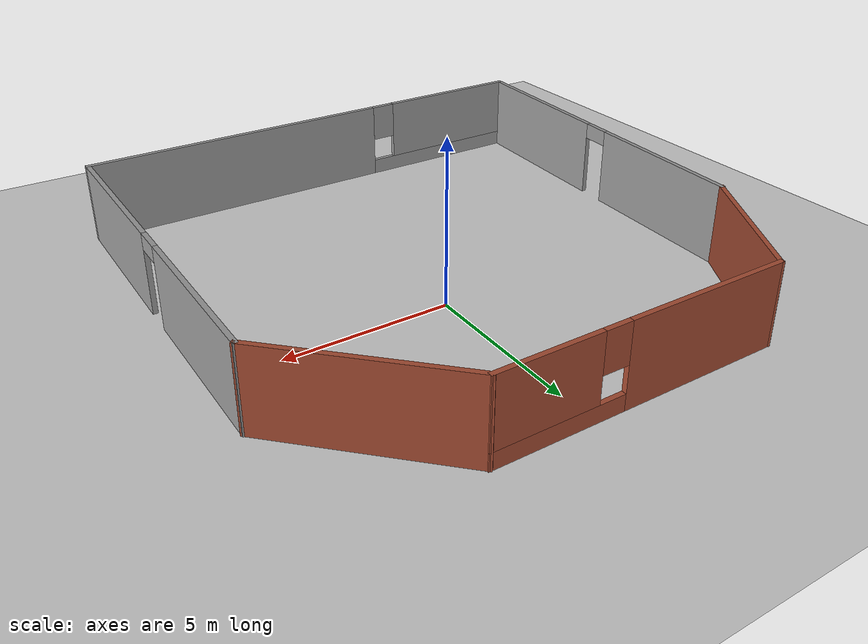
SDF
<sdf version="1.7">
 <world name="default">
  <light name="sun" type="directional">
   <pose>0 0 10 0 -0 0</pose>
   <diffuse>0.8 0.8 0.8 1</diffuse>
   <specular>0.2 0.2 0.2 1</specular>
   <attenuation>
    <range>1000</range>
    <constant>0.9</constant>
    <linear>0.01</linear>
    <quadratic>0.001</quadratic>
   </attenuation>
   <direction>-0.5 0.1 -0.9</direction>
   <spot><inner_angle>0</inner_angle><outer_angle>0</outer_angle><falloff>0</falloff></spot>
  </light>
  <model name="ground_plane">
   <static>1</static>
   <link name="link">
    <collision name="collision">
     <geometry><plane><normal>0 0 1</normal><size>100 100</size></plane></geometry>
     <surface><friction><ode><mu>100</mu><mu2>50</mu2></ode></friction></surface>
    </collision>
    <visual name="visual">
     <cast_shadows>0</cast_shadows>
     <geometry><plane><normal>0 0 1</normal><size>100 100</size></plane></geometry>
     <material>
      <script><uri>file://media/materials/scripts/gazebo.material</uri><name>Gazebo/Grey</name></script>
     </material>
    </visual>
   </link>
  </model>
  <gravity>0 0 -9.8</gravity>
  <magnetic_field>6e-06 2.3e-05 -4.2e-05</magnetic_field>
  <atmosphere type="adiabatic"/>
  <physics type="ode">
   <max_step_size>0.001</max_step_size>
   <real_time_factor>1</real_time_factor>
   <real_time_update_rate>1000</real_time_update_rate>
  </physics>
  <scene><ambient>0.4 0.4 0.4 1</ambient><background>0.7 0.7 0.7 1</background><shadows>1</shadows></scene>
  <audio><device>default</device></audio>
  <spherical_coordinates>
   <surface_model>EARTH_WGS84</surface_model>
   <latitude_deg>0</latitude_deg>
   <longitude_deg>0</longitude_deg>
   <elevation>0</elevation>
   <heading_deg>0</heading_deg>
  </spherical_coordinates>
  <model name="casa">
   <pose>-0.843949 -1.57678 0 0 -0 0</pose>
   <link name="Wall_1">
    <collision name="Wall_1_Collision">
     <geometry><box><size>4.75 0.15 2.5</size></box></geometry>
     <pose>0 0 1.25 0 -0 0</pose>
    </collision>
    <visual name="Wall_1_Visual">
     <pose>0 0 1.25 0 -0 0</pose>
     <geometry><box><size>4.75 0.15 2.5</size></box></geometry>
     <material>
      <script><uri>file://media/materials/scripts/gazebo.material</uri><name>Gazebo/Bricks</name></script>
      <ambient>1 1 1 1</ambient>
     </material>
     <meta><layer>0</layer></meta>
    </visual>
    <pose>-6.17378 5.77406 0 0 -0 1.0472</pose>
   </link>
   <link name="Wall_2">
    <pose>-0.598778 7.76592 0 0 -0 0</pose>
    <visual name="Wall_2_Visual_0">
     <pose>-1.95446 0 1.25 0 -0 0</pose>
     <geometry><box><size>5.09108 0.15 2.5</size></box></geometry>
     <material>
      <script><uri>file://media/materials/scripts/gazebo.material</uri><name>Gazebo/Bricks</name></script>
      <ambient>1 1 1 1</ambient>
     </material>
     <meta><layer>0</layer></meta>
    </visual>
    <collision name="Wall_2_Collision_0">
     <geometry><box><size>5.09108 0.15 2.5</size></box></geometry>
     <pose>-1.95446 0 1.25 0 -0 0</pose>
    </collision>
    <visual name="Wall_2_Visual_1">
     <pose>2.54554 0 0.25 0 -0 0</pose>
     <geometry><box><size>3.90892 0.15 0.5</size></box></geometry>
     <material>
      <script><uri>file://media/materials/scripts/gazebo.material</uri><name>Gazebo/Bricks</name></script>
      <ambient>1 1 1 1</ambient>
     </material>
     <meta><layer>0</layer></meta>
    </visual>
    <collision name="Wall_2_Collision_1">
     <geometry><box><size>3.90892 0.15 0.5</size></box></geometry>
     <pose>2.54554 0 0.25 0 -0 0</pose>
    </collision>
    <visual name="Wall_2_Visual_2">
     <pose>2.94554 0 1.5 0 -0 0</pose>
     <geometry><box><size>3.10892 0.15 2</size></box></geometry>
     <material>
      <script><uri>file://media/materials/scripts/gazebo.material</uri><name>Gazebo/Bricks</name></script>
      <ambient>1 1 1 1</ambient>
     </material>
     <meta><layer>0</layer></meta>
    </visual>
    <collision name="Wall_2_Collision_2">
     <geometry><box><size>3.10892 0.15 2</size></box></geometry>
     <pose>2.94554 0 1.5 0 -0 0</pose>
    </collision>
    <visual name="Wall_2_Visual_3">
     <pose>0.991078 0 1.9 0 -0 0</pose>
     <geometry><box><size>0.8 0.15 1.2</size></box></geometry>
     <material>
      <script><uri>file://media/materials/scripts/gazebo.material</uri><name>Gazebo/Bricks</name></script>
      <ambient>1 1 1 1</ambient>
     </material>
     <meta><layer>0</layer></meta>
    </visual>
    <collision name="Wall_2_Collision_3">
     <geometry><box><size>0.8 0.15 1.2</size></box></geometry>
     <pose>0.991078 0 1.9 0 -0 0</pose>
    </collision>
   </link>
   <link name="Wall_3">
    <collision name="Wall_3_Collision">
     <geometry><box><size>5.75 0.15 2.5</size></box></geometry>
     <pose>0 0 1.25 0 -0 0</pose>
    </collision>
    <visual name="Wall_3_Visual">
     <pose>0 0 1.25 0 -0 0</pose>
     <geometry><box><size>5.75 0.15 2.5</size></box></geometry>
     <material>
      <script><uri>file://media/materials/scripts/gazebo.material</uri><name>Gazebo/Bricks</name></script>
      <ambient>1 1 1 1</ambient>
     </material>
     <meta><layer>0</layer></meta>
    </visual>
    <pose>5.80612 5.78602 0 0 -0 -0.785398</pose>
   </link>
   <link name="Wall_4">
    <pose>7.78602 -1.99388 0 0 -0 -1.5708</pose>
    <visual name="Wall_4_Visual_0">
     <pose>-3.18784 0 1.25 0 -0 0</pose>
     <geometry><box><size>5.37432 0.15 2.5</size></box></geometry>
     <material>
      <script><uri>file://media/materials/scripts/gazebo.material</uri><name>Gazebo/Grey</name></script>
      <ambient>1 1 1 1</ambient>
     </material>
     <meta><layer>0</layer></meta>
    </visual>
    <collision name="Wall_4_Collision_0">
     <geometry><box><size>5.37432 0.15 2.5</size></box></geometry>
     <pose>-3.18784 0 1.25 0 -0 0</pose>
    </collision>
    <visual name="Wall_4_Visual_1">
     <pose>3.13716 0 1.25 0 -0 0</pose>
     <geometry><box><size>5.47568 0.15 2.5</size></box></geometry>
     <material>
      <script><uri>file://media/materials/scripts/gazebo.material</uri><name>Gazebo/Grey</name></script>
      <ambient>1 1 1 1</ambient>
     </material>
     <meta><layer>0</layer></meta>
    </visual>
    <collision name="Wall_4_Collision_1">
     <geometry><box><size>5.47568 0.15 2.5</size></box></geometry>
     <pose>3.13716 0 1.25 0 -0 0</pose>
    </collision>
    <visual name="Wall_4_Visual_2">
     <pose>-0.050681 0 2.25 0 -0 0</pose>
     <geometry><box><size>0.9 0.15 0.5</size></box></geometry>
     <material>
      <script><uri>file://media/materials/scripts/gazebo.material</uri><name>Gazebo/Grey</name></script>
      <ambient>1 1 1 1</ambient>
     </material>
     <meta><layer>0</layer></meta>
    </visual>
    <collision name="Wall_4_Collision_2">
     <geometry><box><size>0.9 0.15 0.5</size></box></geometry>
     <pose>-0.050681 0 2.25 0 -0 0</pose>
    </collision>
   </link>
   <link name="Wall_5">
    <pose>-0.01398 -7.79388 0 0 -0 3.14159</pose>
    <visual name="Wall_5_Visual_0">
     <pose>-2.84257 0 1.25 0 -0 0</pose>
     <geometry><box><size>10.0649 0.15 2.5</size></box></geometry>
     <material>
      <script><uri>file://media/materials/scripts/gazebo.material</uri><name>Gazebo/Grey</name></script>
      <ambient>1 1 1 1</ambient>
     </material>
     <meta><layer>0</layer></meta>
    </visual>
    <collision name="Wall_5_Collision_0">
     <geometry><box><size>10.0649 0.15 2.5</size></box></geometry>
     <pose>-2.84257 0 1.25 0 -0 0</pose>
    </collision>
    <visual name="Wall_5_Visual_1">
     <pose>5.03243 0 0.25 0 -0 0</pose>
     <geometry><box><size>5.68514 0.15 0.5</size></box></geometry>
     <material>
      <script><uri>file://media/materials/scripts/gazebo.material</uri><name>Gazebo/Grey</name></script>
      <ambient>1 1 1 1</ambient>
     </material>
     <meta><layer>0</layer></meta>
    </visual>
    <collision name="Wall_5_Collision_1">
     <geometry><box><size>5.68514 0.15 0.5</size></box></geometry>
     <pose>5.03243 0 0.25 0 -0 0</pose>
    </collision>
    <visual name="Wall_5_Visual_2">
     <pose>5.43243 0 1.5 0 -0 0</pose>
     <geometry><box><size>4.88514 0.15 2</size></box></geometry>
     <material>
      <script><uri>file://media/materials/scripts/gazebo.material</uri><name>Gazebo/Grey</name></script>
      <ambient>1 1 1 1</ambient>
     </material>
     <meta><layer>0</layer></meta>
    </visual>
    <collision name="Wall_5_Collision_2">
     <geometry><box><size>4.88514 0.15 2</size></box></geometry>
     <pose>5.43243 0 1.5 0 -0 0</pose>
    </collision>
    <visual name="Wall_5_Visual_3">
     <pose>2.58986 0 1.9 0 -0 0</pose>
     <geometry><box><size>0.8 0.15 1.2</size></box></geometry>
     <material>
      <script><uri>file://media/materials/scripts/gazebo.material</uri><name>Gazebo/Grey</name></script>
      <ambient>1 1 1 1</ambient>
     </material>
     <meta><layer>0</layer></meta>
    </visual>
    <collision name="Wall_5_Collision_3">
     <geometry><box><size>0.8 0.15 1.2</size></box></geometry>
     <pose>2.58986 0 1.9 0 -0 0</pose>
    </collision>
   </link>
   <link name="Wall_6">
    <pose>-7.56888 -2.00584 0 0 -0 1.52848</pose>
    <visual name="Wall_6_Visual_0">
     <pose>-3.09566 0 1.25 0 -0 0</pose>
     <geometry><box><size>5.54513 0.15 2.5</size></box></geometry>
     <material>
      <script><uri>file://media/materials/scripts/gazebo.material</uri><name>Gazebo/Grey</name></script>
      <ambient>1 1 1 1</ambient>
     </material>
     <meta><layer>0</layer></meta>
    </visual>
    <collision name="Wall_6_Collision_0">
     <geometry><box><size>5.54513 0.15 2.5</size></box></geometry>
     <pose>-3.09566 0 1.25 0 -0 0</pose>
    </collision>
    <visual name="Wall_6_Visual_1">
     <pose>3.22257 0 1.25 0 -0 0</pose>
     <geometry><box><size>5.29132 0.15 2.5</size></box></geometry>
     <material>
      <script><uri>file://media/materials/scripts/gazebo.material</uri><name>Gazebo/Grey</name></script>
      <ambient>1 1 1 1</ambient>
     </material>
     <meta><layer>0</layer></meta>
    </visual>
    <collision name="Wall_6_Collision_1">
     <geometry><box><size>5.29132 0.15 2.5</size></box></geometry>
     <pose>3.22257 0 1.25 0 -0 0</pose>
    </collision>
    <visual name="Wall_6_Visual_2">
     <pose>0.126904 0 2.25 0 -0 0</pose>
     <geometry><box><size>0.9 0.15 0.5</size></box></geometry>
     <material>
      <script><uri>file://media/materials/scripts/gazebo.material</uri><name>Gazebo/Grey</name></script>
      <ambient>1 1 1 1</ambient>
     </material>
     <meta><layer>0</layer></meta>
    </visual>
    <collision name="Wall_6_Collision_2">
     <geometry><box><size>0.9 0.15 0.5</size></box></geometry>
     <pose>0.126904 0 2.25 0 -0 0</pose>
    </collision>
   </link>
   <static>1</static>
  </model>
 </world>
</sdf>
